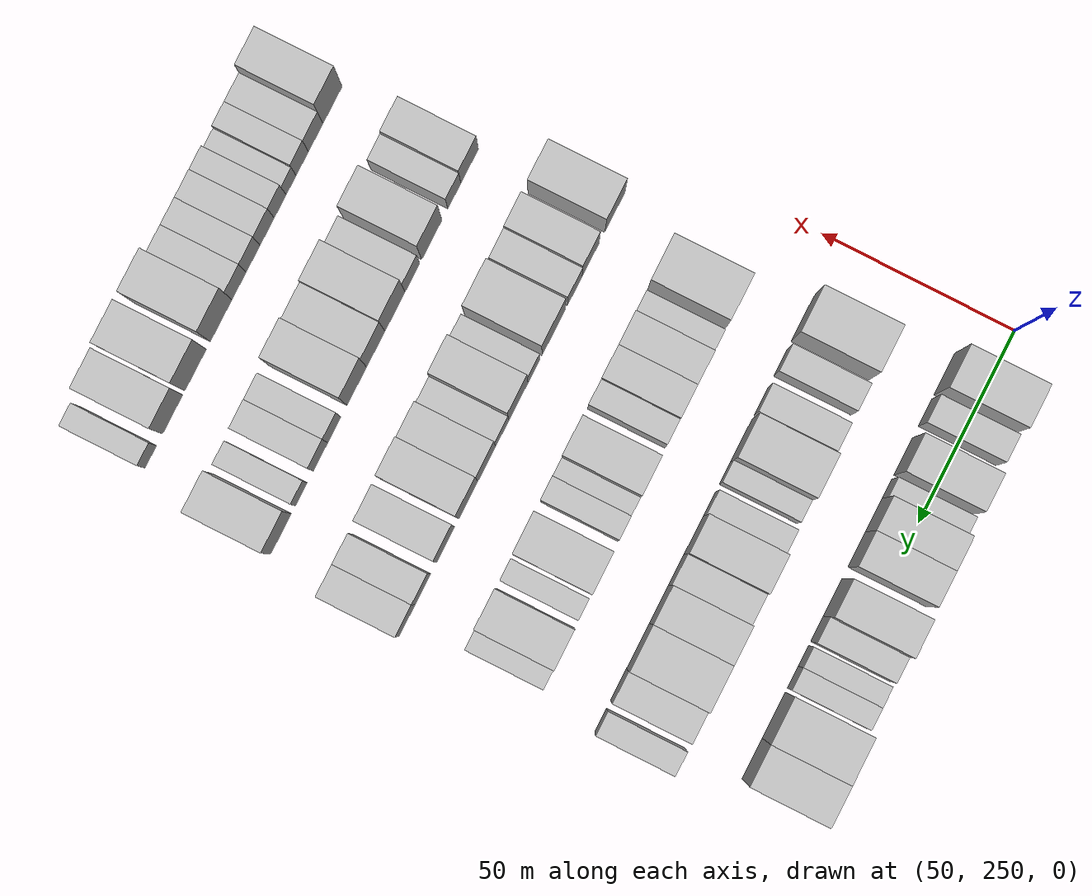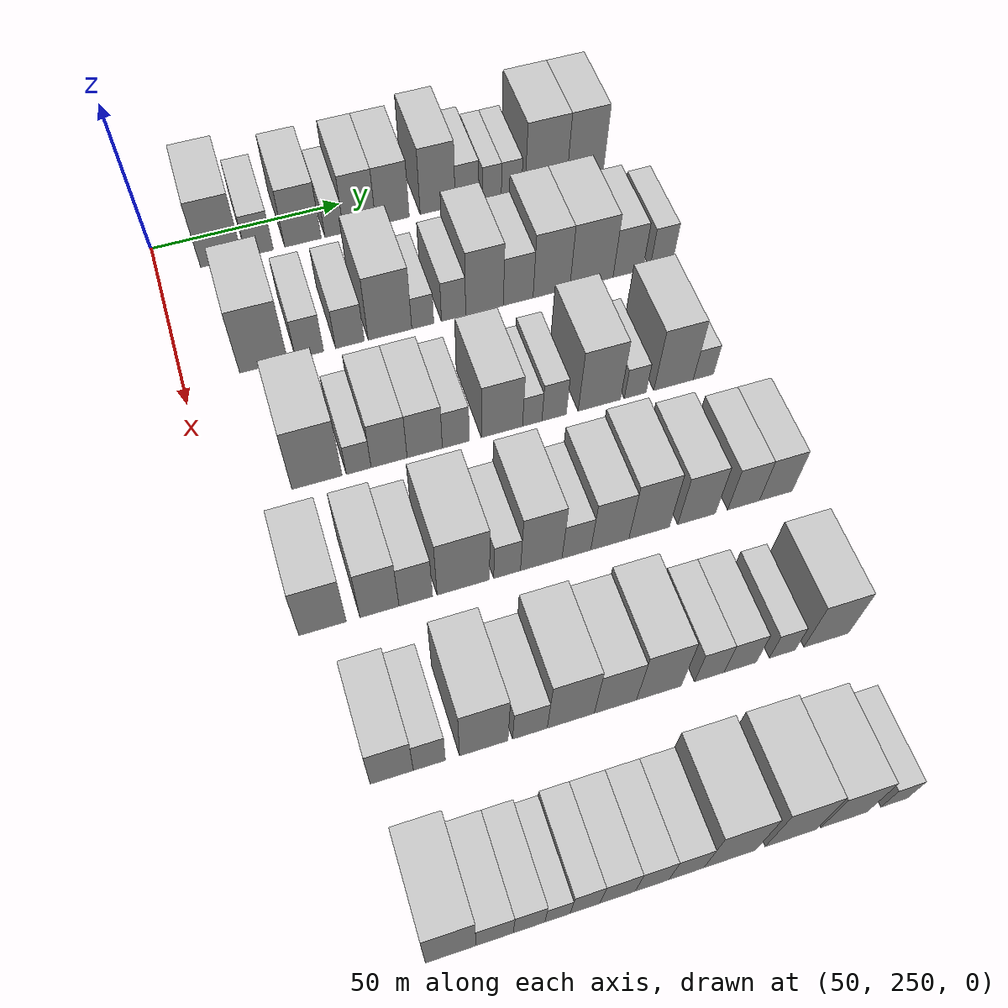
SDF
<sdf version="1.6">
 <world name="default">
  <model name="building_100">
   <static>1</static>
   <pose>50.0000 266.4335 0 0.000000 0.000000 0.000000</pose>
   <link name="link">
    <pose>0 0 12.00 0 0 0</pose>
    <collision name="collision"><geometry><box><size>20.0000 10.8754 24.0000</size></box></geometry></collision>
    <visual name="visual">
     <cast_shadows>0</cast_shadows>
     <geometry><box><size>20.0000 10.8754 24.0000</size></box></geometry>
     <material>
      <script>
       <uri>model://HANNAS_wall/materials/scripts</uri>
       <uri>model://HANNAS_wall/materials/textures</uri>
       <name>vrc/HANNAS_wall</name>
      </script>
     </material>
    </visual>
   </link>
  </model>
  <model name="building_101">
   <static>1</static>
   <pose>50.0000 276.4307 0 0.000000 0.000000 0.000000</pose>
   <link name="link">
    <pose>0 0 7.50 0 0 0</pose>
    <collision name="collision"><geometry><box><size>20.0000 7.1189 15.0000</size></box></geometry></collision>
    <visual name="visual">
     <cast_shadows>0</cast_shadows>
     <geometry><box><size>20.0000 7.1189 15.0000</size></box></geometry>
     <material>
      <script>
       <uri>model://HANNAS_wall/materials/scripts</uri>
       <uri>model://HANNAS_wall/materials/textures</uri>
       <name>vrc/HANNAS_wall</name>
      </script>
     </material>
    </visual>
   </link>
  </model>
  <model name="building_102">
   <static>1</static>
   <pose>50.0000 287.8362 0 0.000000 0.000000 0.000000</pose>
   <link name="link">
    <pose>0 0 10.50 0 0 0</pose>
    <collision name="collision"><geometry><box><size>20.0000 9.6921 21.0000</size></box></geometry></collision>
    <visual name="visual">
     <cast_shadows>0</cast_shadows>
     <geometry><box><size>20.0000 9.6921 21.0000</size></box></geometry>
     <material>
      <script>
       <uri>model://HANNAS_wall/materials/scripts</uri>
       <uri>model://HANNAS_wall/materials/textures</uri>
       <name>vrc/HANNAS_wall</name>
      </script>
     </material>
    </visual>
   </link>
  </model>
  <model name="building_103">
   <static>1</static>
   <pose>50.0000 296.1953 0 0.000000 0.000000 0.000000</pose>
   <link name="link">
    <pose>0 0 6.00 0 0 0</pose>
    <collision name="collision"><geometry><box><size>20.0000 5.0262 12.0000</size></box></geometry></collision>
    <visual name="visual">
     <cast_shadows>0</cast_shadows>
     <geometry><box><size>20.0000 5.0262 12.0000</size></box></geometry>
     <material>
      <script>
       <uri>model://HANNAS_wall/materials/scripts</uri>
       <uri>model://HANNAS_wall/materials/textures</uri>
       <name>vrc/HANNAS_wall</name>
      </script>
     </material>
    </visual>
   </link>
  </model>
  <model name="building_104">
   <static>1</static>
   <pose>50.0000 303.0419 0 0.000000 0.000000 0.000000</pose>
   <link name="link">
    <pose>0 0 10.50 0 0 0</pose>
    <collision name="collision"><geometry><box><size>20.0000 8.6669 21.0000</size></box></geometry></collision>
    <visual name="visual">
     <cast_shadows>0</cast_shadows>
     <geometry><box><size>20.0000 8.6669 21.0000</size></box></geometry>
     <material>
      <script>
       <uri>model://HANNAS_wall/materials/scripts</uri>
       <uri>model://HANNAS_wall/materials/textures</uri>
       <name>vrc/HANNAS_wall</name>
      </script>
     </material>
    </visual>
   </link>
  </model>
  <model name="building_105">
   <static>1</static>
   <pose>50.0000 311.9075 0 0.000000 0.000000 0.000000</pose>
   <link name="link">
    <pose>0 0 10.50 0 0 0</pose>
    <collision name="collision"><geometry><box><size>20.0000 9.0642 21.0000</size></box></geometry></collision>
    <visual name="visual">
     <cast_shadows>0</cast_shadows>
     <geometry><box><size>20.0000 9.0642 21.0000</size></box></geometry>
     <material>
      <script>
       <uri>model://HANNAS_wall/materials/scripts</uri>
       <uri>model://HANNAS_wall/materials/textures</uri>
       <name>vrc/HANNAS_wall</name>
      </script>
     </material>
    </visual>
   </link>
  </model>
  <model name="building_106">
   <static>1</static>
   <pose>50.0000 324.2458 0 0.000000 0.000000 0.000000</pose>
   <link name="link">
    <pose>0 0 12.00 0 0 0</pose>
    <collision name="collision"><geometry><box><size>20.0000 9.6123 24.0000</size></box></geometry></collision>
    <visual name="visual">
     <cast_shadows>0</cast_shadows>
     <geometry><box><size>20.0000 9.6123 24.0000</size></box></geometry>
     <material>
      <script>
       <uri>model://HANNAS_wall/materials/scripts</uri>
       <uri>model://HANNAS_wall/materials/textures</uri>
       <name>vrc/HANNAS_wall</name>
      </script>
     </material>
    </visual>
   </link>
  </model>
  <model name="building_107">
   <static>1</static>
   <pose>50.0000 332.3327 0 0.000000 0.000000 0.000000</pose>
   <link name="link">
    <pose>0 0 7.50 0 0 0</pose>
    <collision name="collision"><geometry><box><size>20.0000 6.5615 15.0000</size></box></geometry></collision>
    <visual name="visual">
     <cast_shadows>0</cast_shadows>
     <geometry><box><size>20.0000 6.5615 15.0000</size></box></geometry>
     <material>
      <script>
       <uri>model://HANNAS_wall/materials/scripts</uri>
       <uri>model://HANNAS_wall/materials/textures</uri>
       <name>vrc/HANNAS_wall</name>
      </script>
     </material>
    </visual>
   </link>
  </model>
  <model name="building_108">
   <static>1</static>
   <pose>50.0000 339.2550 0 0.000000 0.000000 0.000000</pose>
   <link name="link">
    <pose>0 0 6.00 0 0 0</pose>
    <collision name="collision"><geometry><box><size>20.0000 5.2832 12.0000</size></box></geometry></collision>
    <visual name="visual">
     <cast_shadows>0</cast_shadows>
     <geometry><box><size>20.0000 5.2832 12.0000</size></box></geometry>
     <material>
      <script>
       <uri>model://HANNAS_wall/materials/scripts</uri>
       <uri>model://HANNAS_wall/materials/textures</uri>
       <name>vrc/HANNAS_wall</name>
      </script>
     </material>
    </visual>
   </link>
  </model>
  <model name="building_109">
   <static>1</static>
   <pose>50.0000 344.7428 0 0.000000 0.000000 0.000000</pose>
   <link name="link">
    <pose>0 0 6.00 0 0 0</pose>
    <collision name="collision"><geometry><box><size>20.0000 5.6924 12.0000</size></box></geometry></collision>
    <visual name="visual">
     <cast_shadows>0</cast_shadows>
     <geometry><box><size>20.0000 5.6924 12.0000</size></box></geometry>
     <material>
      <script>
       <uri>model://HANNAS_wall/materials/scripts</uri>
       <uri>model://HANNAS_wall/materials/textures</uri>
       <name>vrc/HANNAS_wall</name>
      </script>
     </material>
    </visual>
   </link>
  </model>
  <model name="building_110">
   <static>1</static>
   <pose>50.0000 354.5096 0 0.000000 0.000000 0.000000</pose>
   <link name="link">
    <pose>0 0 12.00 0 0 0</pose>
    <collision name="collision"><geometry><box><size>20.0000 11.8411 24.0000</size></box></geometry></collision>
    <visual name="visual">
     <cast_shadows>0</cast_shadows>
     <geometry><box><size>20.0000 11.8411 24.0000</size></box></geometry>
     <material>
      <script>
       <uri>model://HANNAS_wall/materials/scripts</uri>
       <uri>model://HANNAS_wall/materials/textures</uri>
       <name>vrc/HANNAS_wall</name>
      </script>
     </material>
    </visual>
   </link>
  </model>
  <model name="building_111">
   <static>1</static>
   <pose>50.0000 365.6445 0 0.000000 0.000000 0.000000</pose>
   <link name="link">
    <pose>0 0 12.00 0 0 0</pose>
    <collision name="collision"><geometry><box><size>20.0000 10.4288 24.0000</size></box></geometry></collision>
    <visual name="visual">
     <cast_shadows>0</cast_shadows>
     <geometry><box><size>20.0000 10.4288 24.0000</size></box></geometry>
     <material>
      <script>
       <uri>model://HANNAS_wall/materials/scripts</uri>
       <uri>model://HANNAS_wall/materials/textures</uri>
       <name>vrc/HANNAS_wall</name>
      </script>
     </material>
    </visual>
   </link>
  </model>
  <model name="building_229">
   <static>1</static>
   <pose>85.0000 269.7915 0 0.000000 0.000000 0.000000</pose>
   <link name="link">
    <pose>0 0 12.00 0 0 0</pose>
    <collision name="collision"><geometry><box><size>20.0000 11.8404 24.0000</size></box></geometry></collision>
    <visual name="visual">
     <cast_shadows>0</cast_shadows>
     <geometry><box><size>20.0000 11.8404 24.0000</size></box></geometry>
     <material>
      <script>
       <uri>model://HANNAS_wall/materials/scripts</uri>
       <uri>model://HANNAS_wall/materials/textures</uri>
       <name>vrc/HANNAS_wall</name>
      </script>
     </material>
    </visual>
   </link>
  </model>
  <model name="building_230">
   <static>1</static>
   <pose>85.0000 281.2193 0 0.000000 0.000000 0.000000</pose>
   <link name="link">
    <pose>0 0 7.50 0 0 0</pose>
    <collision name="collision"><geometry><box><size>20.0000 7.0153 15.0000</size></box></geometry></collision>
    <visual name="visual">
     <cast_shadows>0</cast_shadows>
     <geometry><box><size>20.0000 7.0153 15.0000</size></box></geometry>
     <material>
      <script>
       <uri>model://HANNAS_wall/materials/scripts</uri>
       <uri>model://HANNAS_wall/materials/textures</uri>
       <name>vrc/HANNAS_wall</name>
      </script>
     </material>
    </visual>
   </link>
  </model>
  <model name="building_231">
   <static>1</static>
   <pose>85.0000 291.3483 0 0.000000 0.000000 0.000000</pose>
   <link name="link">
    <pose>0 0 7.50 0 0 0</pose>
    <collision name="collision"><geometry><box><size>20.0000 7.2426 15.0000</size></box></geometry></collision>
    <visual name="visual">
     <cast_shadows>0</cast_shadows>
     <geometry><box><size>20.0000 7.2426 15.0000</size></box></geometry>
     <material>
      <script>
       <uri>model://HANNAS_wall/materials/scripts</uri>
       <uri>model://HANNAS_wall/materials/textures</uri>
       <name>vrc/HANNAS_wall</name>
      </script>
     </material>
    </visual>
   </link>
  </model>
  <model name="building_232">
   <static>1</static>
   <pose>85.0000 301.5474 0 0.000000 0.000000 0.000000</pose>
   <link name="link">
    <pose>0 0 12.00 0 0 0</pose>
    <collision name="collision"><geometry><box><size>20.0000 11.1557 24.0000</size></box></geometry></collision>
    <visual name="visual">
     <cast_shadows>0</cast_shadows>
     <geometry><box><size>20.0000 11.1557 24.0000</size></box></geometry>
     <material>
      <script>
       <uri>model://HANNAS_wall/materials/scripts</uri>
       <uri>model://HANNAS_wall/materials/textures</uri>
       <name>vrc/HANNAS_wall</name>
      </script>
     </material>
    </visual>
   </link>
  </model>
  <model name="building_233">
   <static>1</static>
   <pose>85.0000 309.9515 0 0.000000 0.000000 0.000000</pose>
   <link name="link">
    <pose>0 0 6.00 0 0 0</pose>
    <collision name="collision"><geometry><box><size>20.0000 5.6523 12.0000</size></box></geometry></collision>
    <visual name="visual">
     <cast_shadows>0</cast_shadows>
     <geometry><box><size>20.0000 5.6523 12.0000</size></box></geometry>
     <material>
      <script>
       <uri>model://HANNAS_wall/materials/scripts</uri>
       <uri>model://HANNAS_wall/materials/textures</uri>
       <name>vrc/HANNAS_wall</name>
      </script>
     </material>
    </visual>
   </link>
  </model>
  <model name="building_234">
   <static>1</static>
   <pose>85.0000 317.9258 0 0.000000 0.000000 0.000000</pose>
   <link name="link">
    <pose>0 0 7.50 0 0 0</pose>
    <collision name="collision"><geometry><box><size>20.0000 6.2963 15.0000</size></box></geometry></collision>
    <visual name="visual">
     <cast_shadows>0</cast_shadows>
     <geometry><box><size>20.0000 6.2963 15.0000</size></box></geometry>
     <material>
      <script>
       <uri>model://HANNAS_wall/materials/scripts</uri>
       <uri>model://HANNAS_wall/materials/textures</uri>
       <name>vrc/HANNAS_wall</name>
      </script>
     </material>
    </visual>
   </link>
  </model>
  <model name="building_235">
   <static>1</static>
   <pose>85.0000 326.0070 0 0.000000 0.000000 0.000000</pose>
   <link name="link">
    <pose>0 0 12.00 0 0 0</pose>
    <collision name="collision"><geometry><box><size>20.0000 9.8662 24.0000</size></box></geometry></collision>
    <visual name="visual">
     <cast_shadows>0</cast_shadows>
     <geometry><box><size>20.0000 9.8662 24.0000</size></box></geometry>
     <material>
      <script>
       <uri>model://HANNAS_wall/materials/scripts</uri>
       <uri>model://HANNAS_wall/materials/textures</uri>
       <name>vrc/HANNAS_wall</name>
      </script>
     </material>
    </visual>
   </link>
  </model>
  <model name="building_236">
   <static>1</static>
   <pose>85.0000 334.8757 0 0.000000 0.000000 0.000000</pose>
   <link name="link">
    <pose>0 0 9.00 0 0 0</pose>
    <collision name="collision"><geometry><box><size>20.0000 7.8711 18.0000</size></box></geometry></collision>
    <visual name="visual">
     <cast_shadows>0</cast_shadows>
     <geometry><box><size>20.0000 7.8711 18.0000</size></box></geometry>
     <material>
      <script>
       <uri>model://HANNAS_wall/materials/scripts</uri>
       <uri>model://HANNAS_wall/materials/textures</uri>
       <name>vrc/HANNAS_wall</name>
      </script>
     </material>
    </visual>
   </link>
  </model>
  <model name="building_237">
   <static>1</static>
   <pose>85.0000 343.7200 0 0.000000 0.000000 0.000000</pose>
   <link name="link">
    <pose>0 0 12.00 0 0 0</pose>
    <collision name="collision"><geometry><box><size>20.0000 9.8176 24.0000</size></box></geometry></collision>
    <visual name="visual">
     <cast_shadows>0</cast_shadows>
     <geometry><box><size>20.0000 9.8176 24.0000</size></box></geometry>
     <material>
      <script>
       <uri>model://HANNAS_wall/materials/scripts</uri>
       <uri>model://HANNAS_wall/materials/textures</uri>
       <name>vrc/HANNAS_wall</name>
      </script>
     </material>
    </visual>
   </link>
  </model>
  <model name="building_238">
   <static>1</static>
   <pose>85.0000 354.4726 0 0.000000 0.000000 0.000000</pose>
   <link name="link">
    <pose>0 0 12.00 0 0 0</pose>
    <collision name="collision"><geometry><box><size>20.0000 11.6877 24.0000</size></box></geometry></collision>
    <visual name="visual">
     <cast_shadows>0</cast_shadows>
     <geometry><box><size>20.0000 11.6877 24.0000</size></box></geometry>
     <material>
      <script>
       <uri>model://HANNAS_wall/materials/scripts</uri>
       <uri>model://HANNAS_wall/materials/textures</uri>
       <name>vrc/HANNAS_wall</name>
      </script>
     </material>
    </visual>
   </link>
  </model>
  <model name="building_239">
   <static>1</static>
   <pose>85.0000 364.3744 0 0.000000 0.000000 0.000000</pose>
   <link name="link">
    <pose>0 0 9.00 0 0 0</pose>
    <collision name="collision"><geometry><box><size>20.0000 8.1158 18.0000</size></box></geometry></collision>
    <visual name="visual">
     <cast_shadows>0</cast_shadows>
     <geometry><box><size>20.0000 8.1158 18.0000</size></box></geometry>
     <material>
      <script>
       <uri>model://HANNAS_wall/materials/scripts</uri>
       <uri>model://HANNAS_wall/materials/textures</uri>
       <name>vrc/HANNAS_wall</name>
      </script>
     </material>
    </visual>
   </link>
  </model>
  <model name="building_240">
   <static>1</static>
   <pose>85.0000 373.5239 0 0.000000 0.000000 0.000000</pose>
   <link name="link">
    <pose>0 0 7.50 0 0 0</pose>
    <collision name="collision"><geometry><box><size>20.0000 6.1832 15.0000</size></box></geometry></collision>
    <visual name="visual">
     <cast_shadows>0</cast_shadows>
     <geometry><box><size>20.0000 6.1832 15.0000</size></box></geometry>
     <material>
      <script>
       <uri>model://HANNAS_wall/materials/scripts</uri>
       <uri>model://HANNAS_wall/materials/textures</uri>
       <name>vrc/HANNAS_wall</name>
      </script>
     </material>
    </visual>
   </link>
  </model>
  <model name="building_360">
   <static>1</static>
   <pose>120.0000 274.5563 0 0.000000 0.000000 0.000000</pose>
   <link name="link">
    <pose>0 0 12.00 0 0 0</pose>
    <collision name="collision"><geometry><box><size>20.0000 11.8043 24.0000</size></box></geometry></collision>
    <visual name="visual">
     <cast_shadows>0</cast_shadows>
     <geometry><box><size>20.0000 11.8043 24.0000</size></box></geometry>
     <material>
      <script>
       <uri>model://HANNAS_wall/materials/scripts</uri>
       <uri>model://HANNAS_wall/materials/textures</uri>
       <name>vrc/HANNAS_wall</name>
      </script>
     </material>
    </visual>
   </link>
  </model>
  <model name="building_361">
   <static>1</static>
   <pose>120.0000 284.4093 0 0.000000 0.000000 0.000000</pose>
   <link name="link">
    <pose>0 0 6.00 0 0 0</pose>
    <collision name="collision"><geometry><box><size>20.0000 5.9017 12.0000</size></box></geometry></collision>
    <visual name="visual">
     <cast_shadows>0</cast_shadows>
     <geometry><box><size>20.0000 5.9017 12.0000</size></box></geometry>
     <material>
      <script>
       <uri>model://HANNAS_wall/materials/scripts</uri>
       <uri>model://HANNAS_wall/materials/textures</uri>
       <name>vrc/HANNAS_wall</name>
      </script>
     </material>
    </visual>
   </link>
  </model>
  <model name="building_362">
   <static>1</static>
   <pose>120.0000 291.6776 0 0.000000 0.000000 0.000000</pose>
   <link name="link">
    <pose>0 0 9.00 0 0 0</pose>
    <collision name="collision"><geometry><box><size>20.0000 8.6349 18.0000</size></box></geometry></collision>
    <visual name="visual">
     <cast_shadows>0</cast_shadows>
     <geometry><box><size>20.0000 8.6349 18.0000</size></box></geometry>
     <material>
      <script>
       <uri>model://HANNAS_wall/materials/scripts</uri>
       <uri>model://HANNAS_wall/materials/textures</uri>
       <name>vrc/HANNAS_wall</name>
      </script>
     </material>
    </visual>
   </link>
  </model>
  <model name="building_363">
   <static>1</static>
   <pose>120.0000 300.2427 0 0.000000 0.000000 0.000000</pose>
   <link name="link">
    <pose>0 0 9.00 0 0 0</pose>
    <collision name="collision"><geometry><box><size>20.0000 8.4954 18.0000</size></box></geometry></collision>
    <visual name="visual">
     <cast_shadows>0</cast_shadows>
     <geometry><box><size>20.0000 8.4954 18.0000</size></box></geometry>
     <material>
      <script>
       <uri>model://HANNAS_wall/materials/scripts</uri>
       <uri>model://HANNAS_wall/materials/textures</uri>
       <name>vrc/HANNAS_wall</name>
      </script>
     </material>
    </visual>
   </link>
  </model>
  <model name="building_364">
   <static>1</static>
   <pose>120.0000 307.7509 0 0.000000 0.000000 0.000000</pose>
   <link name="link">
    <pose>0 0 7.50 0 0 0</pose>
    <collision name="collision"><geometry><box><size>20.0000 6.5209 15.0000</size></box></geometry></collision>
    <visual name="visual">
     <cast_shadows>0</cast_shadows>
     <geometry><box><size>20.0000 6.5209 15.0000</size></box></geometry>
     <material>
      <script>
       <uri>model://HANNAS_wall/materials/scripts</uri>
       <uri>model://HANNAS_wall/materials/textures</uri>
       <name>vrc/HANNAS_wall</name>
      </script>
     </material>
    </visual>
   </link>
  </model>
  <model name="building_365">
   <static>1</static>
   <pose>120.0000 319.0994 0 0.000000 0.000000 0.000000</pose>
   <link name="link">
    <pose>0 0 10.50 0 0 0</pose>
    <collision name="collision"><geometry><box><size>20.0000 10.1761 21.0000</size></box></geometry></collision>
    <visual name="visual">
     <cast_shadows>0</cast_shadows>
     <geometry><box><size>20.0000 10.1761 21.0000</size></box></geometry>
     <material>
      <script>
       <uri>model://HANNAS_wall/materials/scripts</uri>
       <uri>model://HANNAS_wall/materials/textures</uri>
       <name>vrc/HANNAS_wall</name>
      </script>
     </material>
    </visual>
   </link>
  </model>
  <model name="building_366">
   <static>1</static>
   <pose>120.0000 326.5977 0 0.000000 0.000000 0.000000</pose>
   <link name="link">
    <pose>0 0 6.00 0 0 0</pose>
    <collision name="collision"><geometry><box><size>20.0000 4.8205 12.0000</size></box></geometry></collision>
    <visual name="visual">
     <cast_shadows>0</cast_shadows>
     <geometry><box><size>20.0000 4.8205 12.0000</size></box></geometry>
     <material>
      <script>
       <uri>model://HANNAS_wall/materials/scripts</uri>
       <uri>model://HANNAS_wall/materials/textures</uri>
       <name>vrc/HANNAS_wall</name>
      </script>
     </material>
    </visual>
   </link>
  </model>
  <model name="building_367">
   <static>1</static>
   <pose>120.0000 332.0612 0 0.000000 0.000000 0.000000</pose>
   <link name="link">
    <pose>0 0 7.50 0 0 0</pose>
    <collision name="collision"><geometry><box><size>20.0000 6.1065 15.0000</size></box></geometry></collision>
    <visual name="visual">
     <cast_shadows>0</cast_shadows>
     <geometry><box><size>20.0000 6.1065 15.0000</size></box></geometry>
     <material>
      <script>
       <uri>model://HANNAS_wall/materials/scripts</uri>
       <uri>model://HANNAS_wall/materials/textures</uri>
       <name>vrc/HANNAS_wall</name>
      </script>
     </material>
    </visual>
   </link>
  </model>
  <model name="building_368">
   <static>1</static>
   <pose>120.0000 343.4727 0 0.000000 0.000000 0.000000</pose>
   <link name="link">
    <pose>0 0 12.00 0 0 0</pose>
    <collision name="collision"><geometry><box><size>20.0000 10.7164 24.0000</size></box></geometry></collision>
    <visual name="visual">
     <cast_shadows>0</cast_shadows>
     <geometry><box><size>20.0000 10.7164 24.0000</size></box></geometry>
     <material>
      <script>
       <uri>model://HANNAS_wall/materials/scripts</uri>
       <uri>model://HANNAS_wall/materials/textures</uri>
       <name>vrc/HANNAS_wall</name>
      </script>
     </material>
    </visual>
   </link>
  </model>
  <model name="building_369">
   <static>1</static>
   <pose>120.0000 352.6188 0 0.000000 0.000000 0.000000</pose>
   <link name="link">
    <pose>0 0 6.00 0 0 0</pose>
    <collision name="collision"><geometry><box><size>20.0000 5.5759 12.0000</size></box></geometry></collision>
    <visual name="visual">
     <cast_shadows>0</cast_shadows>
     <geometry><box><size>20.0000 5.5759 12.0000</size></box></geometry>
     <material>
      <script>
       <uri>model://HANNAS_wall/materials/scripts</uri>
       <uri>model://HANNAS_wall/materials/textures</uri>
       <name>vrc/HANNAS_wall</name>
      </script>
     </material>
    </visual>
   </link>
  </model>
  <model name="building_370">
   <static>1</static>
   <pose>120.0000 362.5232 0 0.000000 0.000000 0.000000</pose>
   <link name="link">
    <pose>0 0 12.00 0 0 0</pose>
    <collision name="collision"><geometry><box><size>20.0000 10.2330 24.0000</size></box></geometry></collision>
    <visual name="visual">
     <cast_shadows>0</cast_shadows>
     <geometry><box><size>20.0000 10.2330 24.0000</size></box></geometry>
     <material>
      <script>
       <uri>model://HANNAS_wall/materials/scripts</uri>
       <uri>model://HANNAS_wall/materials/textures</uri>
       <name>vrc/HANNAS_wall</name>
      </script>
     </material>
    </visual>
   </link>
  </model>
  <model name="building_371">
   <static>1</static>
   <pose>120.0000 370.2765 0 0.000000 0.000000 0.000000</pose>
   <link name="link">
    <pose>0 0 6.00 0 0 0</pose>
    <collision name="collision"><geometry><box><size>20.0000 5.2736 12.0000</size></box></geometry></collision>
    <visual name="visual">
     <cast_shadows>0</cast_shadows>
     <geometry><box><size>20.0000 5.2736 12.0000</size></box></geometry>
     <material>
      <script>
       <uri>model://HANNAS_wall/materials/scripts</uri>
       <uri>model://HANNAS_wall/materials/textures</uri>
       <name>vrc/HANNAS_wall</name>
      </script>
     </material>
    </visual>
   </link>
  </model>
  <model name="building_491">
   <static>1</static>
   <pose>155.0000 267.2888 0 0.000000 0.000000 0.000000</pose>
   <link name="link">
    <pose>0 0 10.50 0 0 0</pose>
    <collision name="collision"><geometry><box><size>20.0000 10.4241 21.0000</size></box></geometry></collision>
    <visual name="visual">
     <cast_shadows>0</cast_shadows>
     <geometry><box><size>20.0000 10.4241 21.0000</size></box></geometry>
     <material>
      <script>
       <uri>model://HANNAS_wall/materials/scripts</uri>
       <uri>model://HANNAS_wall/materials/textures</uri>
       <name>vrc/HANNAS_wall</name>
      </script>
     </material>
    </visual>
   </link>
  </model>
  <model name="building_492">
   <static>1</static>
   <pose>155.0000 279.8652 0 0.000000 0.000000 0.000000</pose>
   <link name="link">
    <pose>0 0 10.50 0 0 0</pose>
    <collision name="collision"><geometry><box><size>20.0000 8.7288 21.0000</size></box></geometry></collision>
    <visual name="visual">
     <cast_shadows>0</cast_shadows>
     <geometry><box><size>20.0000 8.7288 21.0000</size></box></geometry>
     <material>
      <script>
       <uri>model://HANNAS_wall/materials/scripts</uri>
       <uri>model://HANNAS_wall/materials/textures</uri>
       <name>vrc/HANNAS_wall</name>
      </script>
     </material>
    </visual>
   </link>
  </model>
  <model name="building_493">
   <static>1</static>
   <pose>155.0000 288.0059 0 0.000000 0.000000 0.000000</pose>
   <link name="link">
    <pose>0 0 9.00 0 0 0</pose>
    <collision name="collision"><geometry><box><size>20.0000 7.5524 18.0000</size></box></geometry></collision>
    <visual name="visual">
     <cast_shadows>0</cast_shadows>
     <geometry><box><size>20.0000 7.5524 18.0000</size></box></geometry>
     <material>
      <script>
       <uri>model://HANNAS_wall/materials/scripts</uri>
       <uri>model://HANNAS_wall/materials/textures</uri>
       <name>vrc/HANNAS_wall</name>
      </script>
     </material>
    </visual>
   </link>
  </model>
  <model name="building_494">
   <static>1</static>
   <pose>155.0000 298.7483 0 0.000000 0.000000 0.000000</pose>
   <link name="link">
    <pose>0 0 12.00 0 0 0</pose>
    <collision name="collision"><geometry><box><size>20.0000 11.9324 24.0000</size></box></geometry></collision>
    <visual name="visual">
     <cast_shadows>0</cast_shadows>
     <geometry><box><size>20.0000 11.9324 24.0000</size></box></geometry>
     <material>
      <script>
       <uri>model://HANNAS_wall/materials/scripts</uri>
       <uri>model://HANNAS_wall/materials/textures</uri>
       <name>vrc/HANNAS_wall</name>
      </script>
     </material>
    </visual>
   </link>
  </model>
  <model name="building_495">
   <static>1</static>
   <pose>155.0000 308.8019 0 0.000000 0.000000 0.000000</pose>
   <link name="link">
    <pose>0 0 7.50 0 0 0</pose>
    <collision name="collision"><geometry><box><size>20.0000 6.1748 15.0000</size></box></geometry></collision>
    <visual name="visual">
     <cast_shadows>0</cast_shadows>
     <geometry><box><size>20.0000 6.1748 15.0000</size></box></geometry>
     <material>
      <script>
       <uri>model://HANNAS_wall/materials/scripts</uri>
       <uri>model://HANNAS_wall/materials/textures</uri>
       <name>vrc/HANNAS_wall</name>
      </script>
     </material>
    </visual>
   </link>
  </model>
  <model name="building_496">
   <static>1</static>
   <pose>155.0000 316.7245 0 0.000000 0.000000 0.000000</pose>
   <link name="link">
    <pose>0 0 12.00 0 0 0</pose>
    <collision name="collision"><geometry><box><size>20.0000 9.6703 24.0000</size></box></geometry></collision>
    <visual name="visual">
     <cast_shadows>0</cast_shadows>
     <geometry><box><size>20.0000 9.6703 24.0000</size></box></geometry>
     <material>
      <script>
       <uri>model://HANNAS_wall/materials/scripts</uri>
       <uri>model://HANNAS_wall/materials/textures</uri>
       <name>vrc/HANNAS_wall</name>
      </script>
     </material>
    </visual>
   </link>
  </model>
  <model name="building_497">
   <static>1</static>
   <pose>155.0000 324.9397 0 0.000000 0.000000 0.000000</pose>
   <link name="link">
    <pose>0 0 7.50 0 0 0</pose>
    <collision name="collision"><geometry><box><size>20.0000 6.7601 15.0000</size></box></geometry></collision>
    <visual name="visual">
     <cast_shadows>0</cast_shadows>
     <geometry><box><size>20.0000 6.7601 15.0000</size></box></geometry>
     <material>
      <script>
       <uri>model://HANNAS_wall/materials/scripts</uri>
       <uri>model://HANNAS_wall/materials/textures</uri>
       <name>vrc/HANNAS_wall</name>
      </script>
     </material>
    </visual>
   </link>
  </model>
  <model name="building_498">
   <static>1</static>
   <pose>155.0000 332.8476 0 0.000000 0.000000 0.000000</pose>
   <link name="link">
    <pose>0 0 10.50 0 0 0</pose>
    <collision name="collision"><geometry><box><size>20.0000 9.0558 21.0000</size></box></geometry></collision>
    <visual name="visual">
     <cast_shadows>0</cast_shadows>
     <geometry><box><size>20.0000 9.0558 21.0000</size></box></geometry>
     <material>
      <script>
       <uri>model://HANNAS_wall/materials/scripts</uri>
       <uri>model://HANNAS_wall/materials/textures</uri>
       <name>vrc/HANNAS_wall</name>
      </script>
     </material>
    </visual>
   </link>
  </model>
  <model name="building_499">
   <static>1</static>
   <pose>155.0000 342.2480 0 0.000000 0.000000 0.000000</pose>
   <link name="link">
    <pose>0 0 12.00 0 0 0</pose>
    <collision name="collision"><geometry><box><size>20.0000 9.7448 24.0000</size></box></geometry></collision>
    <visual name="visual">
     <cast_shadows>0</cast_shadows>
     <geometry><box><size>20.0000 9.7448 24.0000</size></box></geometry>
     <material>
      <script>
       <uri>model://HANNAS_wall/materials/scripts</uri>
       <uri>model://HANNAS_wall/materials/textures</uri>
       <name>vrc/HANNAS_wall</name>
      </script>
     </material>
    </visual>
   </link>
  </model>
  <model name="building_500">
   <static>1</static>
   <pose>155.0000 353.7036 0 0.000000 0.000000 0.000000</pose>
   <link name="link">
    <pose>0 0 10.50 0 0 0</pose>
    <collision name="collision"><geometry><box><size>20.0000 9.1663 21.0000</size></box></geometry></collision>
    <visual name="visual">
     <cast_shadows>0</cast_shadows>
     <geometry><box><size>20.0000 9.1663 21.0000</size></box></geometry>
     <material>
      <script>
       <uri>model://HANNAS_wall/materials/scripts</uri>
       <uri>model://HANNAS_wall/materials/textures</uri>
       <name>vrc/HANNAS_wall</name>
      </script>
     </material>
    </visual>
   </link>
  </model>
  <model name="building_501">
   <static>1</static>
   <pose>155.0000 365.2009 0 0.000000 0.000000 0.000000</pose>
   <link name="link">
    <pose>0 0 9.00 0 0 0</pose>
    <collision name="collision"><geometry><box><size>20.0000 7.8283 18.0000</size></box></geometry></collision>
    <visual name="visual">
     <cast_shadows>0</cast_shadows>
     <geometry><box><size>20.0000 7.8283 18.0000</size></box></geometry>
     <material>
      <script>
       <uri>model://HANNAS_wall/materials/scripts</uri>
       <uri>model://HANNAS_wall/materials/textures</uri>
       <name>vrc/HANNAS_wall</name>
      </script>
     </material>
    </visual>
   </link>
  </model>
  <model name="building_502">
   <static>1</static>
   <pose>155.0000 373.1881 0 0.000000 0.000000 0.000000</pose>
   <link name="link">
    <pose>0 0 9.00 0 0 0</pose>
    <collision name="collision"><geometry><box><size>20.0000 8.1460 18.0000</size></box></geometry></collision>
    <visual name="visual">
     <cast_shadows>0</cast_shadows>
     <geometry><box><size>20.0000 8.1460 18.0000</size></box></geometry>
     <material>
      <script>
       <uri>model://HANNAS_wall/materials/scripts</uri>
       <uri>model://HANNAS_wall/materials/textures</uri>
       <name>vrc/HANNAS_wall</name>
      </script>
     </material>
    </visual>
   </link>
  </model>
  <model name="building_618">
   <static>1</static>
   <pose>190.0000 272.9293 0 0.000000 0.000000 0.000000</pose>
   <link name="link">
    <pose>0 0 9.00 0 0 0</pose>
    <collision name="collision"><geometry><box><size>20.0000 8.9616 18.0000</size></box></geometry></collision>
    <visual name="visual">
     <cast_shadows>0</cast_shadows>
     <geometry><box><size>20.0000 8.9616 18.0000</size></box></geometry>
     <material>
      <script>
       <uri>model://HANNAS_wall/materials/scripts</uri>
       <uri>model://HANNAS_wall/materials/textures</uri>
       <name>vrc/HANNAS_wall</name>
      </script>
     </material>
    </visual>
   </link>
  </model>
  <model name="building_619">
   <static>1</static>
   <pose>190.0000 280.7557 0 0.000000 0.000000 0.000000</pose>
   <link name="link">
    <pose>0 0 7.50 0 0 0</pose>
    <collision name="collision"><geometry><box><size>20.0000 6.6913 15.0000</size></box></geometry></collision>
    <visual name="visual">
     <cast_shadows>0</cast_shadows>
     <geometry><box><size>20.0000 6.6913 15.0000</size></box></geometry>
     <material>
      <script>
       <uri>model://HANNAS_wall/materials/scripts</uri>
       <uri>model://HANNAS_wall/materials/textures</uri>
       <name>vrc/HANNAS_wall</name>
      </script>
     </material>
    </visual>
   </link>
  </model>
  <model name="building_620">
   <static>1</static>
   <pose>190.0000 292.2521 0 0.000000 0.000000 0.000000</pose>
   <link name="link">
    <pose>0 0 12.00 0 0 0</pose>
    <collision name="collision"><geometry><box><size>20.0000 10.3015 24.0000</size></box></geometry></collision>
    <visual name="visual">
     <cast_shadows>0</cast_shadows>
     <geometry><box><size>20.0000 10.3015 24.0000</size></box></geometry>
     <material>
      <script>
       <uri>model://HANNAS_wall/materials/scripts</uri>
       <uri>model://HANNAS_wall/materials/textures</uri>
       <name>vrc/HANNAS_wall</name>
      </script>
     </material>
    </visual>
   </link>
  </model>
  <model name="building_621">
   <static>1</static>
   <pose>190.0000 302.1318 0 0.000000 0.000000 0.000000</pose>
   <link name="link">
    <pose>0 0 7.50 0 0 0</pose>
    <collision name="collision"><geometry><box><size>20.0000 7.4579 15.0000</size></box></geometry></collision>
    <visual name="visual">
     <cast_shadows>0</cast_shadows>
     <geometry><box><size>20.0000 7.4579 15.0000</size></box></geometry>
     <material>
      <script>
       <uri>model://HANNAS_wall/materials/scripts</uri>
       <uri>model://HANNAS_wall/materials/textures</uri>
       <name>vrc/HANNAS_wall</name>
      </script>
     </material>
    </visual>
   </link>
  </model>
  <model name="building_622">
   <static>1</static>
   <pose>190.0000 310.9871 0 0.000000 0.000000 0.000000</pose>
   <link name="link">
    <pose>0 0 12.00 0 0 0</pose>
    <collision name="collision"><geometry><box><size>20.0000 10.2527 24.0000</size></box></geometry></collision>
    <visual name="visual">
     <cast_shadows>0</cast_shadows>
     <geometry><box><size>20.0000 10.2527 24.0000</size></box></geometry>
     <material>
      <script>
       <uri>model://HANNAS_wall/materials/scripts</uri>
       <uri>model://HANNAS_wall/materials/textures</uri>
       <name>vrc/HANNAS_wall</name>
      </script>
     </material>
    </visual>
   </link>
  </model>
  <model name="building_623">
   <static>1</static>
   <pose>190.0000 320.7800 0 0.000000 0.000000 0.000000</pose>
   <link name="link">
    <pose>0 0 10.50 0 0 0</pose>
    <collision name="collision"><geometry><box><size>20.0000 9.3330 21.0000</size></box></geometry></collision>
    <visual name="visual">
     <cast_shadows>0</cast_shadows>
     <geometry><box><size>20.0000 9.3330 21.0000</size></box></geometry>
     <material>
      <script>
       <uri>model://HANNAS_wall/materials/scripts</uri>
       <uri>model://HANNAS_wall/materials/textures</uri>
       <name>vrc/HANNAS_wall</name>
      </script>
     </material>
    </visual>
   </link>
  </model>
  <model name="building_624">
   <static>1</static>
   <pose>190.0000 330.4400 0 0.000000 0.000000 0.000000</pose>
   <link name="link">
    <pose>0 0 12.00 0 0 0</pose>
    <collision name="collision"><geometry><box><size>20.0000 9.9870 24.0000</size></box></geometry></collision>
    <visual name="visual">
     <cast_shadows>0</cast_shadows>
     <geometry><box><size>20.0000 9.9870 24.0000</size></box></geometry>
     <material>
      <script>
       <uri>model://HANNAS_wall/materials/scripts</uri>
       <uri>model://HANNAS_wall/materials/textures</uri>
       <name>vrc/HANNAS_wall</name>
      </script>
     </material>
    </visual>
   </link>
  </model>
  <model name="building_625">
   <static>1</static>
   <pose>190.0000 341.7970 0 0.000000 0.000000 0.000000</pose>
   <link name="link">
    <pose>0 0 7.50 0 0 0</pose>
    <collision name="collision"><geometry><box><size>20.0000 6.7271 15.0000</size></box></geometry></collision>
    <visual name="visual">
     <cast_shadows>0</cast_shadows>
     <geometry><box><size>20.0000 6.7271 15.0000</size></box></geometry>
     <material>
      <script>
       <uri>model://HANNAS_wall/materials/scripts</uri>
       <uri>model://HANNAS_wall/materials/textures</uri>
       <name>vrc/HANNAS_wall</name>
      </script>
     </material>
    </visual>
   </link>
  </model>
  <model name="building_626">
   <static>1</static>
   <pose>190.0000 348.8309 0 0.000000 0.000000 0.000000</pose>
   <link name="link">
    <pose>0 0 7.50 0 0 0</pose>
    <collision name="collision"><geometry><box><size>20.0000 7.3408 15.0000</size></box></geometry></collision>
    <visual name="visual">
     <cast_shadows>0</cast_shadows>
     <geometry><box><size>20.0000 7.3408 15.0000</size></box></geometry>
     <material>
      <script>
       <uri>model://HANNAS_wall/materials/scripts</uri>
       <uri>model://HANNAS_wall/materials/textures</uri>
       <name>vrc/HANNAS_wall</name>
      </script>
     </material>
    </visual>
   </link>
  </model>
  <model name="building_627">
   <static>1</static>
   <pose>190.0000 358.4965 0 0.000000 0.000000 0.000000</pose>
   <link name="link">
    <pose>0 0 6.00 0 0 0</pose>
    <collision name="collision"><geometry><box><size>20.0000 5.9904 12.0000</size></box></geometry></collision>
    <visual name="visual">
     <cast_shadows>0</cast_shadows>
     <geometry><box><size>20.0000 5.9904 12.0000</size></box></geometry>
     <material>
      <script>
       <uri>model://HANNAS_wall/materials/scripts</uri>
       <uri>model://HANNAS_wall/materials/textures</uri>
       <name>vrc/HANNAS_wall</name>
      </script>
     </material>
    </visual>
   </link>
  </model>
  <model name="building_628">
   <static>1</static>
   <pose>190.0000 368.7203 0 0.000000 0.000000 0.000000</pose>
   <link name="link">
    <pose>0 0 10.50 0 0 0</pose>
    <collision name="collision"><geometry><box><size>20.0000 10.4571 21.0000</size></box></geometry></collision>
    <visual name="visual">
     <cast_shadows>0</cast_shadows>
     <geometry><box><size>20.0000 10.4571 21.0000</size></box></geometry>
     <material>
      <script>
       <uri>model://HANNAS_wall/materials/scripts</uri>
       <uri>model://HANNAS_wall/materials/textures</uri>
       <name>vrc/HANNAS_wall</name>
      </script>
     </material>
    </visual>
   </link>
  </model>
  <model name="building_744">
   <static>1</static>
   <pose>225.0000 274.5787 0 0.000000 0.000000 0.000000</pose>
   <link name="link">
    <pose>0 0 12.00 0 0 0</pose>
    <collision name="collision"><geometry><box><size>20.0000 9.7614 24.0000</size></box></geometry></collision>
    <visual name="visual">
     <cast_shadows>0</cast_shadows>
     <geometry><box><size>20.0000 9.7614 24.0000</size></box></geometry>
     <material>
      <script>
       <uri>model://HANNAS_wall/materials/scripts</uri>
       <uri>model://HANNAS_wall/materials/textures</uri>
       <name>vrc/HANNAS_wall</name>
      </script>
     </material>
    </visual>
   </link>
  </model>
  <model name="building_745">
   <static>1</static>
   <pose>225.0000 283.1572 0 0.000000 0.000000 0.000000</pose>
   <link name="link">
    <pose>0 0 7.50 0 0 0</pose>
    <collision name="collision"><geometry><box><size>20.0000 7.3957 15.0000</size></box></geometry></collision>
    <visual name="visual">
     <cast_shadows>0</cast_shadows>
     <geometry><box><size>20.0000 7.3957 15.0000</size></box></geometry>
     <material>
      <script>
       <uri>model://HANNAS_wall/materials/scripts</uri>
       <uri>model://HANNAS_wall/materials/textures</uri>
       <name>vrc/HANNAS_wall</name>
      </script>
     </material>
    </visual>
   </link>
  </model>
  <model name="building_746">
   <static>1</static>
   <pose>225.0000 289.9901 0 0.000000 0.000000 0.000000</pose>
   <link name="link">
    <pose>0 0 7.50 0 0 0</pose>
    <collision name="collision"><geometry><box><size>20.0000 6.2702 15.0000</size></box></geometry></collision>
    <visual name="visual">
     <cast_shadows>0</cast_shadows>
     <geometry><box><size>20.0000 6.2702 15.0000</size></box></geometry>
     <material>
      <script>
       <uri>model://HANNAS_wall/materials/scripts</uri>
       <uri>model://HANNAS_wall/materials/textures</uri>
       <name>vrc/HANNAS_wall</name>
      </script>
     </material>
    </visual>
   </link>
  </model>
  <model name="building_747">
   <static>1</static>
   <pose>225.0000 295.6636 0 0.000000 0.000000 0.000000</pose>
   <link name="link">
    <pose>0 0 6.00 0 0 0</pose>
    <collision name="collision"><geometry><box><size>20.0000 5.0767 12.0000</size></box></geometry></collision>
    <visual name="visual">
     <cast_shadows>0</cast_shadows>
     <geometry><box><size>20.0000 5.0767 12.0000</size></box></geometry>
     <material>
      <script>
       <uri>model://HANNAS_wall/materials/scripts</uri>
       <uri>model://HANNAS_wall/materials/textures</uri>
       <name>vrc/HANNAS_wall</name>
      </script>
     </material>
    </visual>
   </link>
  </model>
  <model name="building_748">
   <static>1</static>
   <pose>225.0000 301.2222 0 0.000000 0.000000 0.000000</pose>
   <link name="link">
    <pose>0 0 7.50 0 0 0</pose>
    <collision name="collision"><geometry><box><size>20.0000 6.0404 15.0000</size></box></geometry></collision>
    <visual name="visual">
     <cast_shadows>0</cast_shadows>
     <geometry><box><size>20.0000 6.0404 15.0000</size></box></geometry>
     <material>
      <script>
       <uri>model://HANNAS_wall/materials/scripts</uri>
       <uri>model://HANNAS_wall/materials/textures</uri>
       <name>vrc/HANNAS_wall</name>
      </script>
     </material>
    </visual>
   </link>
  </model>
  <model name="building_749">
   <static>1</static>
   <pose>225.0000 307.8413 0 0.000000 0.000000 0.000000</pose>
   <link name="link">
    <pose>0 0 7.50 0 0 0</pose>
    <collision name="collision"><geometry><box><size>20.0000 7.1978 15.0000</size></box></geometry></collision>
    <visual name="visual">
     <cast_shadows>0</cast_shadows>
     <geometry><box><size>20.0000 7.1978 15.0000</size></box></geometry>
     <material>
      <script>
       <uri>model://HANNAS_wall/materials/scripts</uri>
       <uri>model://HANNAS_wall/materials/textures</uri>
       <name>vrc/HANNAS_wall</name>
      </script>
     </material>
    </visual>
   </link>
  </model>
  <model name="building_750">
   <static>1</static>
   <pose>225.0000 314.9299 0 0.000000 0.000000 0.000000</pose>
   <link name="link">
    <pose>0 0 7.50 0 0 0</pose>
    <collision name="collision"><geometry><box><size>20.0000 6.9795 15.0000</size></box></geometry></collision>
    <visual name="visual">
     <cast_shadows>0</cast_shadows>
     <geometry><box><size>20.0000 6.9795 15.0000</size></box></geometry>
     <material>
      <script>
       <uri>model://HANNAS_wall/materials/scripts</uri>
       <uri>model://HANNAS_wall/materials/textures</uri>
       <name>vrc/HANNAS_wall</name>
      </script>
     </material>
    </visual>
   </link>
  </model>
  <model name="building_751">
   <static>1</static>
   <pose>225.0000 322.0340 0 0.000000 0.000000 0.000000</pose>
   <link name="link">
    <pose>0 0 7.50 0 0 0</pose>
    <collision name="collision"><geometry><box><size>20.0000 7.2286 15.0000</size></box></geometry></collision>
    <visual name="visual">
     <cast_shadows>0</cast_shadows>
     <geometry><box><size>20.0000 7.2286 15.0000</size></box></geometry>
     <material>
      <script>
       <uri>model://HANNAS_wall/materials/scripts</uri>
       <uri>model://HANNAS_wall/materials/textures</uri>
       <name>vrc/HANNAS_wall</name>
      </script>
     </material>
    </visual>
   </link>
  </model>
  <model name="building_752">
   <static>1</static>
   <pose>225.0000 331.1129 0 0.000000 0.000000 0.000000</pose>
   <link name="link">
    <pose>0 0 12.00 0 0 0</pose>
    <collision name="collision"><geometry><box><size>20.0000 10.9293 24.0000</size></box></geometry></collision>
    <visual name="visual">
     <cast_shadows>0</cast_shadows>
     <geometry><box><size>20.0000 10.9293 24.0000</size></box></geometry>
     <material>
      <script>
       <uri>model://HANNAS_wall/materials/scripts</uri>
       <uri>model://HANNAS_wall/materials/textures</uri>
       <name>vrc/HANNAS_wall</name>
      </script>
     </material>
    </visual>
   </link>
  </model>
  <model name="building_753">
   <static>1</static>
   <pose>225.0000 344.0040 0 0.000000 0.000000 0.000000</pose>
   <link name="link">
    <pose>0 0 12.00 0 0 0</pose>
    <collision name="collision"><geometry><box><size>20.0000 10.8530 24.0000</size></box></geometry></collision>
    <visual name="visual">
     <cast_shadows>0</cast_shadows>
     <geometry><box><size>20.0000 10.8530 24.0000</size></box></geometry>
     <material>
      <script>
       <uri>model://HANNAS_wall/materials/scripts</uri>
       <uri>model://HANNAS_wall/materials/textures</uri>
       <name>vrc/HANNAS_wall</name>
      </script>
     </material>
    </visual>
   </link>
  </model>
  <model name="building_754">
   <static>1</static>
   <pose>225.0000 355.5093 0 0.000000 0.000000 0.000000</pose>
   <link name="link">
    <pose>0 0 10.50 0 0 0</pose>
    <collision name="collision"><geometry><box><size>20.0000 10.1574 21.0000</size></box></geometry></collision>
    <visual name="visual">
     <cast_shadows>0</cast_shadows>
     <geometry><box><size>20.0000 10.1574 21.0000</size></box></geometry>
     <material>
      <script>
       <uri>model://HANNAS_wall/materials/scripts</uri>
       <uri>model://HANNAS_wall/materials/textures</uri>
       <name>vrc/HANNAS_wall</name>
      </script>
     </material>
    </visual>
   </link>
  </model>
  <model name="building_755">
   <static>1</static>
   <pose>225.0000 366.5120 0 0.000000 0.000000 0.000000</pose>
   <link name="link">
    <pose>0 0 6.00 0 0 0</pose>
    <collision name="collision"><geometry><box><size>20.0000 5.8481 12.0000</size></box></geometry></collision>
    <visual name="visual">
     <cast_shadows>0</cast_shadows>
     <geometry><box><size>20.0000 5.8481 12.0000</size></box></geometry>
     <material>
      <script>
       <uri>model://HANNAS_wall/materials/scripts</uri>
       <uri>model://HANNAS_wall/materials/textures</uri>
       <name>vrc/HANNAS_wall</name>
      </script>
     </material>
    </visual>
   </link>
  </model>
 </world>
</sdf>
